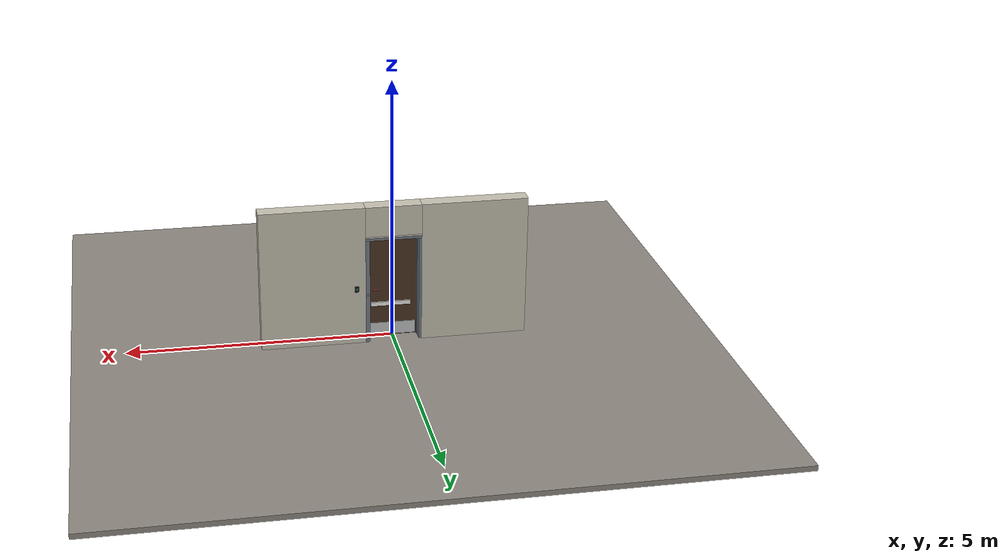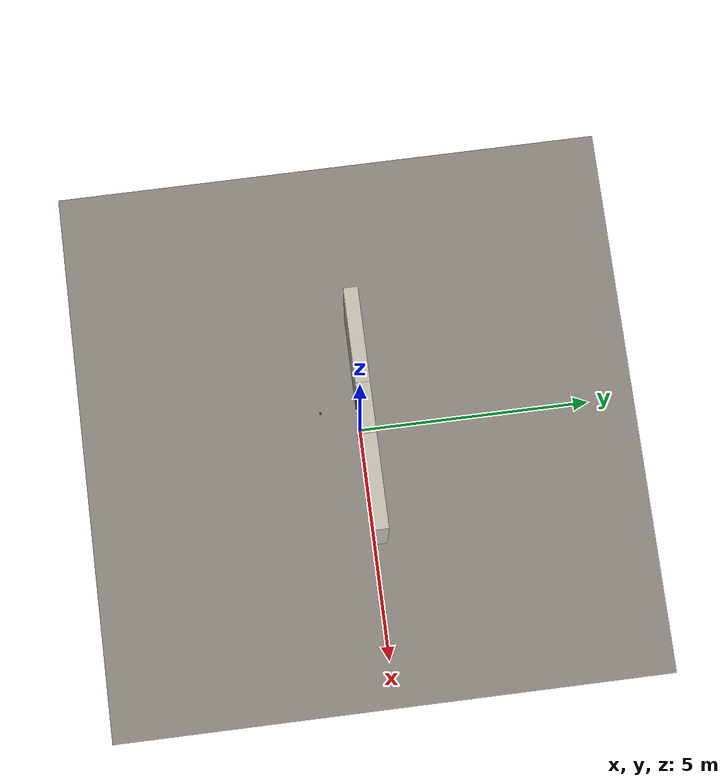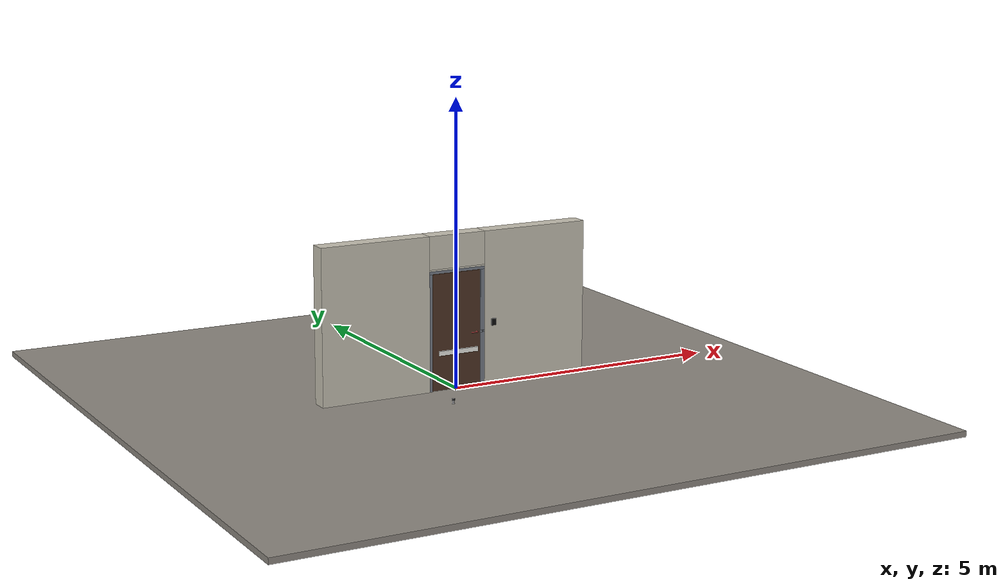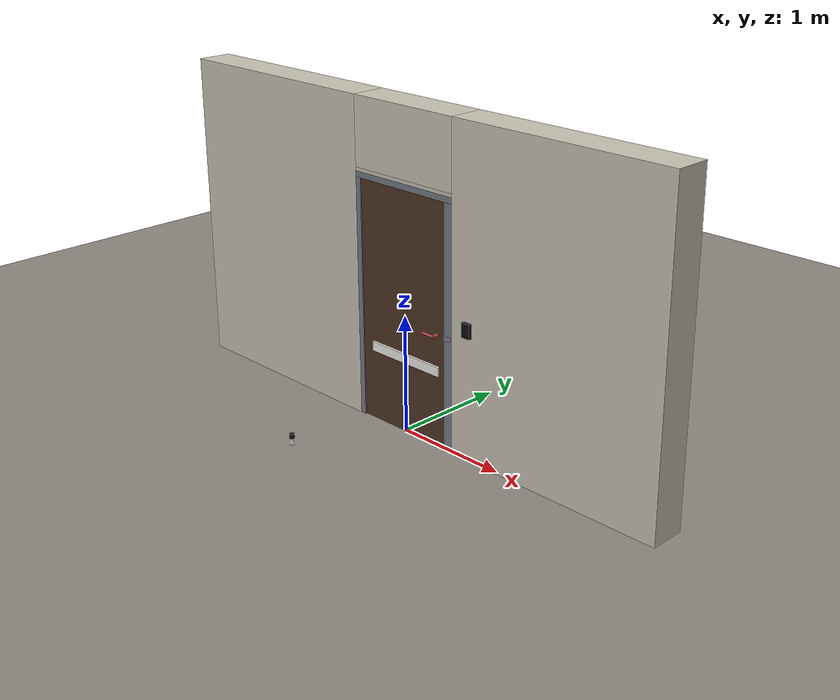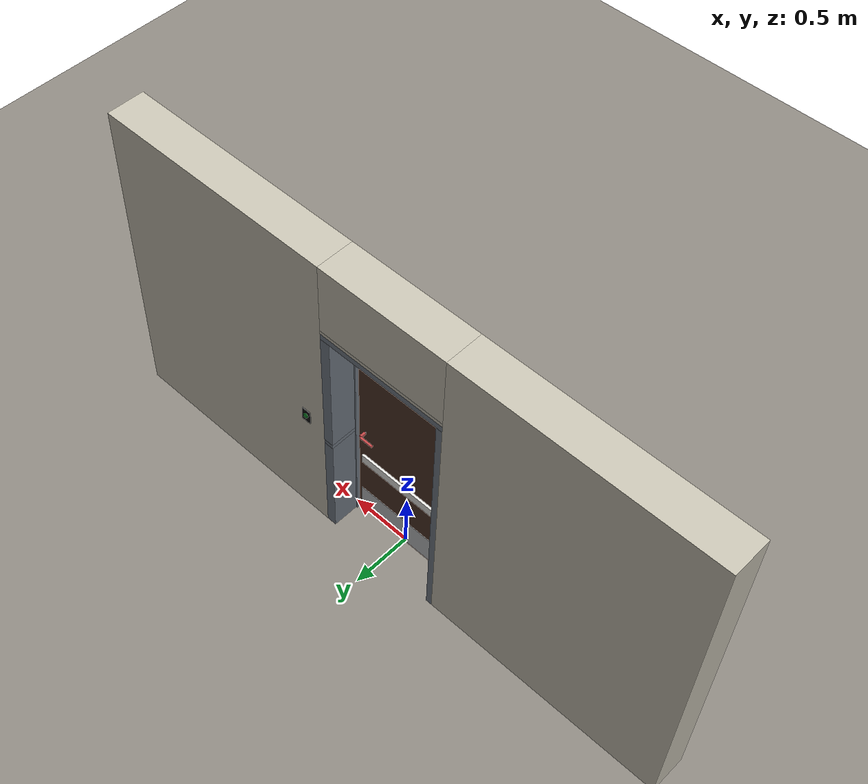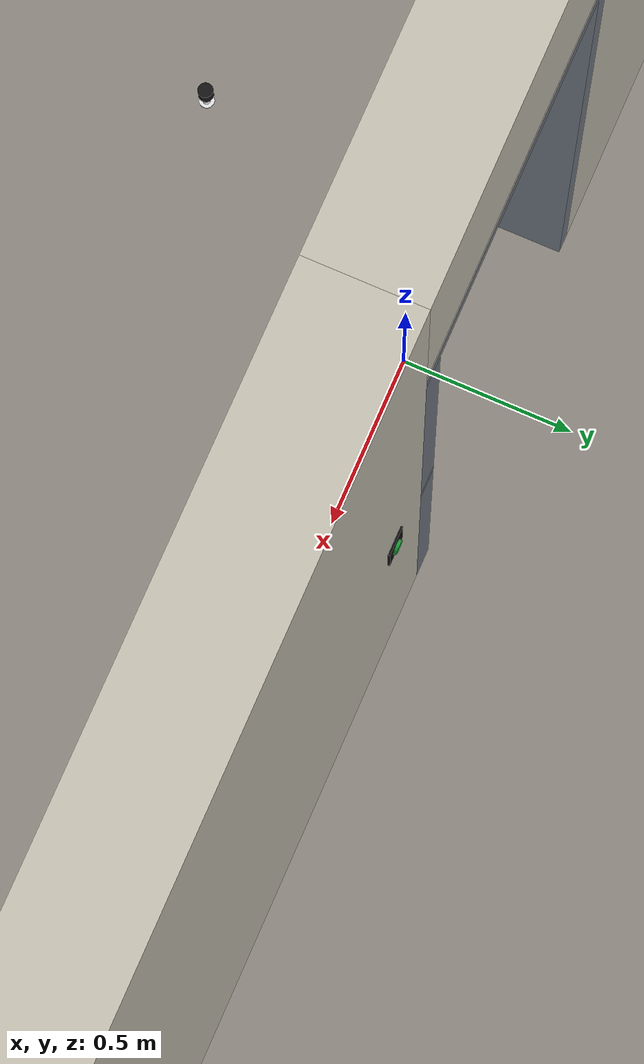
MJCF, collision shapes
<?xml version="1.0" ?>
<mujoco model="db0094_swing_single_full">
  <compiler angle="radian" meshdir="../../hardware" texturedir="../../textures" autolimits="true" inertiafromgeom="false"/>
  <option timestep="0.002" integrator="implicitfast" cone="elliptic" impratio="10" noslip_iterations="3">
    <flag multiccd="enable"/>
  </option>
  <size memory="16M"/>
  <default>
    <geom condim="4" solref="0.005 1" solimp="0.95 0.99 0.001"/>
    <joint solreflimit="0.005 1" solimplimit="0.95 0.99 0.001"/>
    <tendon solreflimit="0.005 1"/>
    <equality solref="0.002 1"/>
  </default>
  <visual>
    <headlight ambient="0.4 0.4 0.4" diffuse="0.7 0.7 0.7" specular="0.2 0.2 0.2"/>
    <quality shadowsize="4096"/>
    <map znear="0.01" zfar="60"/>
  </visual>
  <asset>
    <mesh name="hinge_e22b26c0c1" file="hinge_e22b26c0c1.obj"/>
    <mesh name="hinge_jamb_e1d088f8dc" file="hinge_jamb_e1d088f8dc.obj"/>
    <mesh name="lever_6268dcb28c" file="lever_6268dcb28c.obj"/>
    <material name="mat_floor" rgba="0.55 0.53 0.5 1" specular="0.2" shininess="0.15" reflectance="0"/>
    <material name="mat_wall" rgba="0.78 0.76 0.7 1" specular="0.2" shininess="0.1" reflectance="0"/>
    <material name="mat_leaf" rgba="0.3 0.2 0.14 1" specular="0.2" shininess="0.5" reflectance="0"/>
    <material name="mat_hinge" rgba="0.65 0.66 0.68 1" specular="0.74" shininess="0.5" reflectance="0.36"/>
    <material name="mat_op_stainless" rgba="0.75 0.76 0.77 1" specular="0.8" shininess="0.65" reflectance="0.4"/>
    <material name="mat_trim" rgba="0.85 0.66 0.3 1" specular="0.8" shininess="0.75" reflectance="0.4"/>
    <material name="mat_bolt" rgba="0.75 0.76 0.77 1" specular="0.8" shininess="0.65" reflectance="0.4"/>
    <material name="mat_frame" rgba="0.45 0.48 0.52 1" specular="0.32" shininess="0.6" reflectance="0.08"/>
    <material name="mat_kick" rgba="0.75 0.76 0.77 1" specular="0.8" shininess="0.65" reflectance="0.4"/>
    <material name="mat_bumper" rgba="0.92 0.92 0.9 1" specular="0.2" shininess="0.6" reflectance="0"/>
    <material name="mat_wallreader" rgba="0.05 0.05 0.05 1" specular="0.38" shininess="0.3" reflectance="0.12"/>
    <material name="mat_rex" rgba="0.1 0.6 0.2 1" specular="0.2" shininess="0.6" reflectance="0"/>
    <material name="mat_bumper_stop" rgba="0.08 0.08 0.08 1" specular="0.2" shininess="0.1" reflectance="0"/>
    <material name="mat_stop_base" rgba="0.9 0.9 0.92 1" specular="0.8" shininess="0.9" reflectance="0.4"/>
    <texture name="skybox" type="skybox" builtin="gradient" rgb1="0.6 0.7 0.85" rgb2="0.9 0.92 0.95" width="256" height="256"/>
  </asset>
  <worldbody>
    <light name="sun" pos="1.5 -2.5 4" dir="-0.3 0.5 -0.8" directional="true" diffuse="0.8 0.8 0.8" specular="0.3 0.3 0.3" castshadow="true"/>
    <light name="fill" pos="-1.5 2.5 3" dir="0.3 -0.5 -0.7" directional="true" diffuse="0.35 0.35 0.4" castshadow="false"/>
    <camera name="robot_view" pos="0 -2.421187 1.734312" xyaxes="1 0 0 0 0.26963 0.962964" fovy="52"/>
    <camera name="far_view" pos="0 2.663187 1.734312" xyaxes="-1 0 0 0 -0.26963 0.962964" fovy="52"/>
    <camera name="iso" pos="1.932062 -2.014438 2.141063" xyaxes="0.741536 0.670913 0 -0.242917 0.268487 0.932151" fovy="46"/>
    <camera name="detail_handle" pos="0.4705 -0.877 1.245" xyaxes="0.97561 0.219512 0 -0.070934 0.315262 0.94635" fovy="38"/>
    <geom name="floor" type="box" size="6 6 0.05" pos="0 0 -0.05" material="mat_floor" group="0" contype="1" conaffinity="1" friction="0.8 0.005 0.0001" density="2400"/>
    <geom name="wall_left" type="box" size="0.99475 0.15 1.35" pos="-1.50525 0.121 1.35" material="mat_wall" group="0" contype="1" conaffinity="1" friction="0.6 0.005 0.0001" density="800"/>
    <geom name="wall_right" type="box" size="0.97975 0.15 1.35" pos="1.52025 0.121 1.35" material="mat_wall" group="0" contype="1" conaffinity="1" friction="0.6 0.005 0.0001" density="800"/>
    <geom name="wall_header" type="box" size="0.5255 0.15 0.2875" pos="0.015 0.121 2.4125" material="mat_wall" group="0" contype="1" conaffinity="1" friction="0.6 0.005 0.0001" density="800"/>
    <geom name="hinge_0_jamb" type="mesh" mesh="hinge_jamb_e1d088f8dc" pos="-0.4575 -0.029 0.259" material="mat_hinge" group="1" contype="0" conaffinity="0" density="7850"/>
    <geom name="hinge_1_jamb" type="mesh" mesh="hinge_jamb_e1d088f8dc" pos="-0.4575 -0.029 0.793" material="mat_hinge" group="1" contype="0" conaffinity="0" density="7850"/>
    <geom name="hinge_2_jamb" type="mesh" mesh="hinge_jamb_e1d088f8dc" pos="-0.4575 -0.029 1.327" material="mat_hinge" group="1" contype="0" conaffinity="0" density="7850"/>
    <geom name="hinge_3_jamb" type="mesh" mesh="hinge_jamb_e1d088f8dc" pos="-0.4575 -0.029 1.861" material="mat_hinge" group="1" contype="0" conaffinity="0" density="7850"/>
    <geom name="jamb_hinge" type="box" size="0.025 0.15 1.0225" pos="-0.4855 0.121 1.0225" material="mat_frame" group="0" contype="1" conaffinity="1" friction="0.6 0.005 0.0001" density="300"/>
    <geom name="strike_965_wall_n" type="box" size="0.04 0.13075 0.018" pos="0.5005 0.14025 0.965" material="mat_frame" group="0" contype="1" conaffinity="1" friction="0.6 0.005 0.0001" density="300"/>
    <geom name="strike_965_wall_p" type="box" size="0.04 0.008 0.018" pos="0.5005 -0.0175 0.965" material="mat_frame" group="0" contype="1" conaffinity="1" friction="0.6 0.005 0.0001" density="300"/>
    <geom name="strike_965_ramp" type="box" size="0.04 0.018028 0.018" pos="0.503782 -0.018312 0.965" quat="0.957092 0 0 0.289784" material="mat_frame" group="0" contype="1" conaffinity="1" friction="0.12 0.005 0.0001" density="300"/>
    <geom name="strike_965_back" type="box" size="0.0285 0.0095 0.018" pos="0.512 0 0.965" material="mat_frame" group="0" contype="1" conaffinity="1" friction="0.6 0.005 0.0001" density="300"/>
    <geom name="jamb_strike_0" type="box" size="0.04 0.15 0.4735" pos="0.5005 0.121 0.4735" material="mat_frame" group="0" contype="1" conaffinity="1" friction="0.6 0.005 0.0001" density="300"/>
    <geom name="jamb_strike_1" type="box" size="0.04 0.15 0.531" pos="0.5005 0.121 1.514" material="mat_frame" group="0" contype="1" conaffinity="1" friction="0.6 0.005 0.0001" density="300"/>
    <geom name="jamb_head" type="box" size="0.5255 0.15 0.025" pos="0.015 0.121 2.07" material="mat_frame" group="0" contype="1" conaffinity="1" friction="0.6 0.005 0.0001" density="300"/>
    <geom name="head_stud" type="box" size="0.5255 0.15 0.015" pos="0.015 0.121 2.11" material="mat_wall" group="0" contype="1" conaffinity="1" friction="0.6 0.005 0.0001" density="500"/>
    <geom name="stop_hinge" type="box" size="0.0055 0.016 1.0225" pos="-0.455 0.0385 1.0225" material="mat_frame" group="0" contype="1" conaffinity="1" friction="0.6 0.005 0.0001" density="300"/>
    <geom name="stop_strike" type="box" size="0.0055 0.016 1.0225" pos="0.455 0.0385 1.0225" material="mat_frame" group="0" contype="1" conaffinity="1" friction="0.6 0.005 0.0001" density="300"/>
    <geom name="stop_head" type="box" size="0.4605 0.016 0.0055" pos="0 0.0385 2.0395" material="mat_frame" group="0" contype="1" conaffinity="1" friction="0.6 0.005 0.0001" density="300"/>
    <geom name="wall_reader" type="box" size="0.04 0.015 0.06" pos="0.7105 -0.044 1.1" material="mat_wallreader" group="0" contype="1" conaffinity="1" friction="0.6 0.005 0.0001" density="1000"/>
    <geom name="rex_plate" type="box" size="0.04 0.003 0.06" pos="0.7105 0.274 1.1" material="mat_wallreader" group="1" contype="0" conaffinity="0" density="1000"/>
    <geom name="door_stop_base" type="cylinder" size="0.022 0.003" pos="-0.4735 -0.8059 0.003" material="mat_stop_base" group="0" contype="1" conaffinity="1" friction="0.6 0.005 0.0001" density="7850"/>
    <geom name="door_stop_post" type="cylinder" size="0.012 0.0245" pos="-0.4735 -0.8059 0.0305" material="mat_stop_base" group="0" contype="1" conaffinity="1" friction="0.6 0.005 0.0001" density="7850"/>
    <geom name="door_stop_bumper" type="cylinder" size="0.022 0.02" pos="-0.4735 -0.8059 0.075" material="mat_bumper_stop" group="0" contype="1" conaffinity="1" friction="0.6 0.005 0.0001" density="1100"/>
    <site name="approach_point" pos="0 -1.5 0" quat="1 0 0 0" size="0.05" rgba="0.2 0.9 0.2 0.5" group="4"/>
    <site name="goal_point" pos="0 1.5 0" quat="1 0 0 0" size="0.05" rgba="0.2 0.9 0.2 0.5" group="4"/>
    <site name="door_plane_center" pos="0 0 1.0225" quat="1 0 0 0" size="0.02" rgba="0.2 0.9 0.2 0.5" group="4"/>
    <body name="rex_button" pos="0.7105 0.277 1.1">
      <inertial pos="0 0.004 0" mass="0.010053" quat="0 0 0.707107 -0.707107" diaginertia="0.000001059 0.000001059 0.000002011"/>
      <joint name="rex_button_slide" type="slide" axis="0 -1 0" limited="true" range="0 0.004" damping="1" stiffness="1500" springref="-0.004" armature="0.1"/>
      <geom name="rex_button_geom" type="cylinder" size="0.02 0.004" pos="0 0.004 0" quat="0.707107 -0.707107 0 0" material="mat_rex" group="0" contype="1" conaffinity="1" friction="0.6 0.005 0.0001" density="1000"/>
    </body>
    <body name="leaf" pos="-0.4605 0 0">
      <inertial pos="0.454464 0.000735 0.968725" mass="59.588696" quat="0.500031 -0.497855 -0.500904 -0.501203" diaginertia="4.208432708 20.912061539 25.093882432"/>
      <joint name="leaf_hinge" type="hinge" axis="0 0 -1" pos="0.003 -0.029 0" limited="true" range="0 1.570796" damping="0.30611" frictionloss="0.333534" armature="0.02"/>
      <geom name="leaf_slab" type="box" size="0.457 0.022 1.016" pos="0.46 0 1.025" material="mat_leaf" group="0" contype="1" conaffinity="1" friction="0.4 0.005 0.0001" density="1"/>
      <geom name="hinge_0" type="mesh" mesh="hinge_e22b26c0c1" pos="0.003 -0.029 0.259" material="mat_hinge" group="1" contype="0" conaffinity="0" density="7850"/>
      <geom name="hinge_1" type="mesh" mesh="hinge_e22b26c0c1" pos="0.003 -0.029 0.793" material="mat_hinge" group="1" contype="0" conaffinity="0" density="7850"/>
      <geom name="hinge_2" type="mesh" mesh="hinge_e22b26c0c1" pos="0.003 -0.029 1.327" material="mat_hinge" group="1" contype="0" conaffinity="0" density="7850"/>
      <geom name="hinge_3" type="mesh" mesh="hinge_e22b26c0c1" pos="0.003 -0.029 1.861" material="mat_hinge" group="1" contype="0" conaffinity="0" density="7850"/>
      <geom name="leaf_latch_bolt_faceplate" type="box" size="0.0006 0.014 0.028" pos="0.9164 0 0.965" material="mat_bolt" group="1" contype="0" conaffinity="0" density="8500"/>
      <geom name="kick_plate_p" type="box" size="0.427 0.0008 0.125" pos="0.46 0.0228 0.144" material="mat_kick" group="2" contype="0" conaffinity="0" density="7900"/>
      <geom name="bumper_rail_n" type="box" size="0.372 0.01 0.04" pos="0.495 -0.032 0.659" material="mat_bumper" group="0" contype="1" conaffinity="1" friction="0.6 0.005 0.0001" density="1200"/>
      <geom name="bumper_rail_p" type="box" size="0.372 0.01 0.04" pos="0.495 0.032 0.659" material="mat_bumper" group="0" contype="1" conaffinity="1" friction="0.6 0.005 0.0001" density="1200"/>
      <site name="leaf_edge_mid" pos="0.917 0 1.016" quat="1 0 0 0" size="0.02" rgba="0.2 0.9 0.2 0.5" group="4"/>
      <body name="leaf_handle" pos="0.847 0 0.965">
        <inertial pos="-0.035149 0 0" mass="1.038236" quat="0 0.707107 0.707107 0" diaginertia="0.002348364 0.00382535 0.005606687"/>
        <joint name="leaf_handle_hinge" type="hinge" axis="0 -1 0" limited="true" range="0 0.96" damping="0.255791" frictionloss="0.05" stiffness="1.2" springref="-0.583333" armature="0.01"/>
        <geom name="leaf_handle_spindle" type="cylinder" size="0.006 0.03" pos="0 0 0" quat="0.707107 -0.707107 0 0" material="mat_op_stainless" group="1" contype="0" conaffinity="0" density="7850"/>
        <geom name="leaf_handle_lever_n" type="mesh" mesh="lever_6268dcb28c" pos="0 -0.022 0" quat="0.707107 0.707107 0 0" material="mat_op_stainless" group="1" contype="0" conaffinity="0" density="3000"/>
        <geom name="leaf_handle_lever_col_n" type="capsule" size="0.0095 0.0505" pos="-0.06 -0.077 0" quat="0.707107 0 -0.707107 0" material="mat_op_stainless" group="3" contype="1" conaffinity="1" rgba="0.8 0.3 0.3 0.25" friction="0.7 0.01 0.0001" density="3000"/>
        <geom name="leaf_handle_hub_col_n" type="cylinder" size="0.012 0.022" pos="0 -0.052 0" quat="0.707107 -0.707107 0 0" material="mat_op_stainless" group="3" contype="1" conaffinity="1" rgba="0.8 0.3 0.3 0.25" friction="0.6 0.005 0.0001" density="3000"/>
        <geom name="leaf_handle_lever_p" type="mesh" mesh="lever_6268dcb28c" pos="0 0.022 0" quat="-0.707107 0.707107 0 0" material="mat_op_stainless" group="1" contype="0" conaffinity="0" density="3000"/>
        <geom name="leaf_handle_lever_col_p" type="capsule" size="0.0095 0.0505" pos="-0.06 0.077 0" quat="0.707107 0 -0.707107 0" material="mat_op_stainless" group="3" contype="1" conaffinity="1" rgba="0.8 0.3 0.3 0.25" friction="0.7 0.01 0.0001" density="3000"/>
        <geom name="leaf_handle_hub_col_p" type="cylinder" size="0.012 0.022" pos="0 0.052 0" quat="0.707107 -0.707107 0 0" material="mat_op_stainless" group="3" contype="1" conaffinity="1" rgba="0.8 0.3 0.3 0.25" friction="0.6 0.005 0.0001" density="3000"/>
        <site name="leaf_handle_grip_n" pos="-0.096 -0.077 0" quat="1 0 0 0" size="0.012" rgba="0.2 0.9 0.2 0.5" group="4"/>
        <site name="leaf_handle_grip_p" pos="-0.096 0.077 0" quat="1 0 0 0" size="0.012" rgba="0.2 0.9 0.2 0.5" group="4"/>
      </body>
      <body name="leaf_latch_bolt" pos="0.917 0 0.965">
        <inertial pos="-0.0055 0 0" mass="0.074627" quat="0.92388 -0.382683 0 0" diaginertia="0.000002271 0.000013255 0.000013255"/>
        <joint name="leaf_latch_bolt_slide" type="slide" axis="-1 0 0" limited="true" range="0 0.019" damping="2" frictionloss="0.3" stiffness="550" springref="-0.01" armature="0.1"/>
        <geom name="leaf_latch_bolt_capsule" type="capsule" size="0.008 0.0165" pos="-0.0055 0 0" quat="0.707107 0 0.707107 0" material="mat_bolt" group="0" contype="1" conaffinity="1" friction="0.2 0.005 0.0001" density="8500"/>
      </body>
    </body>
  </worldbody>
  <tendon>
    <fixed name="leaf_latch_bolt_coupling" limited="true" range="0 10">
      <joint joint="leaf_latch_bolt_slide" coef="1"/>
      <joint joint="leaf_handle_hinge" coef="-0.020879"/>
    </fixed>
  </tendon>
  <sensor>
    <jointpos name="leaf_hinge_pos" joint="leaf_hinge"/>
    <jointvel name="leaf_hinge_vel" joint="leaf_hinge"/>
    <jointpos name="leaf_handle_hinge_pos" joint="leaf_handle_hinge"/>
    <jointvel name="leaf_handle_hinge_vel" joint="leaf_handle_hinge"/>
    <jointpos name="leaf_latch_bolt_slide_pos" joint="leaf_latch_bolt_slide"/>
    <jointvel name="leaf_latch_bolt_slide_vel" joint="leaf_latch_bolt_slide"/>
    <jointpos name="rex_button_slide_pos" joint="rex_button_slide"/>
    <jointvel name="rex_button_slide_vel" joint="rex_button_slide"/>
  </sensor>
</mujoco>
